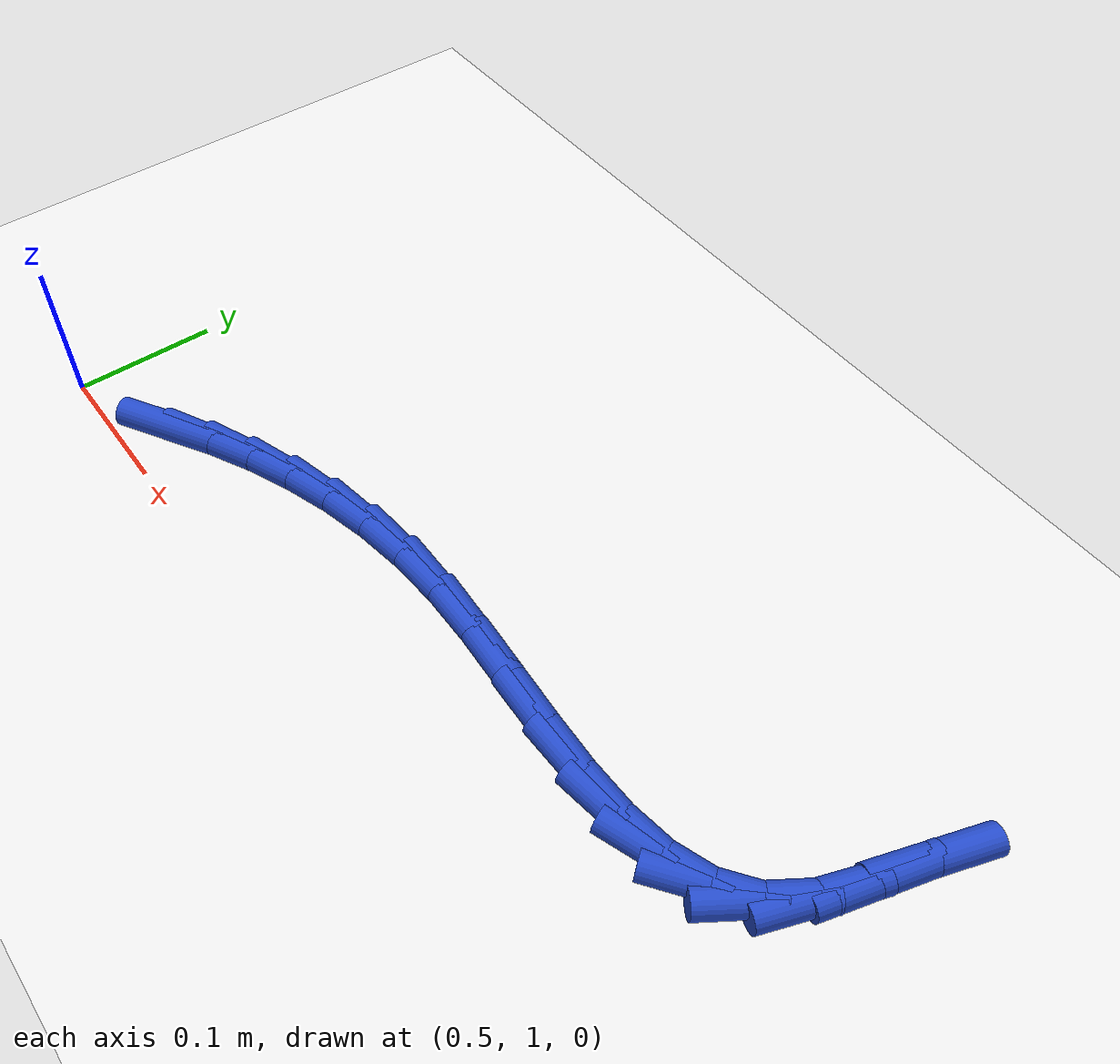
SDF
<sdf version="1.6">
 <world name="default">
  <model name="ground_plane">
   <static>1</static>
   <link name="link">
    <collision name="collision">
     <geometry><plane><normal>0 0 1</normal><size>100 100</size></plane></geometry>
     <surface><friction><ode><mu>100</mu><mu2>50</mu2></ode></friction></surface>
    </collision>
    <visual name="visual">
     <cast_shadows>0</cast_shadows>
     <geometry><plane><normal>0 0 1</normal><size>100 100</size></plane></geometry>
     <material>
      <script><uri>file://media/materials/scripts/gazebo.material</uri><name>Gazebo/WhiteGlow</name></script>
     </material>
    </visual>
   </link>
  </model>
  <model name="line">
   <link name="link_38">
    <pose>0.5825424784225489 1.0328110645333466 0.01 0 1.57 0.5474065831876195</pose>
    <collision name="collision">
     <geometry><cylinder><radius>0.01</radius><length>0.08</length></cylinder></geometry>
    </collision>
    <visual name="visual">
     <material>
      <script><name>Gazebo/Blue</name><uri>file://media/materials/scripts/gazebo.material</uri></script>
     </material>
     <geometry><cylinder><radius>0.01</radius><length>0.08</length></cylinder></geometry>
    </visual>
   </link>
   <link name="link_39">
    <pose>0.6098832795739517 1.049476447361553 0.01 0 1.57 0.4804702966707305</pose>
    <collision name="collision">
     <geometry><cylinder><radius>0.01</radius><length>0.08</length></cylinder></geometry>
    </collision>
    <visual name="visual">
     <material>
      <script><name>Gazebo/Blue</name><uri>file://media/materials/scripts/gazebo.material</uri></script>
     </material>
     <geometry><cylinder><radius>0.01</radius><length>0.08</length></cylinder></geometry>
    </visual>
   </link>
   <link name="link_40">
    <pose>0.6383939959958345 1.0643364823566703 0.01 0 1.57 0.40749841973965417</pose>
    <collision name="collision">
     <geometry><cylinder><radius>0.01</radius><length>0.08</length></cylinder></geometry>
    </collision>
    <visual name="visual">
     <material>
      <script><name>Gazebo/Blue</name><uri>file://media/materials/scripts/gazebo.material</uri></script>
     </material>
     <geometry><cylinder><radius>0.01</radius><length>0.08</length></cylinder></geometry>
    </visual>
   </link>
   <link name="link_41">
    <pose>0.6681399343372383 1.0771766227002644 0.01 0 1.57 0.32917852488138627</pose>
    <collision name="collision">
     <geometry><cylinder><radius>0.01</radius><length>0.08</length></cylinder></geometry>
    </collision>
    <visual name="visual">
     <material>
      <script><name>Gazebo/Blue</name><uri>file://media/materials/scripts/gazebo.material</uri></script>
     </material>
     <geometry><cylinder><radius>0.01</radius><length>0.08</length></cylinder></geometry>
    </visual>
   </link>
   <link name="link_42">
    <pose>0.699186401247205 1.087782321573901 0.01 0 1.57 0.24653549059472318</pose>
    <collision name="collision">
     <geometry><cylinder><radius>0.01</radius><length>0.08</length></cylinder></geometry>
    </collision>
    <visual name="visual">
     <material>
      <script><name>Gazebo/Blue</name><uri>file://media/materials/scripts/gazebo.material</uri></script>
     </material>
     <geometry><cylinder><radius>0.01</radius><length>0.08</length></cylinder></geometry>
    </visual>
   </link>
   <link name="link_43">
    <pose>0.7315987033747753 1.095939032159146 0.01 0 1.57 0.16090811380330003</pose>
    <collision name="collision">
     <geometry><cylinder><radius>0.01</radius><length>0.08</length></cylinder></geometry>
    </collision>
    <visual name="visual">
     <material>
      <script><name>Gazebo/Blue</name><uri>file://media/materials/scripts/gazebo.material</uri></script>
     </material>
     <geometry><cylinder><radius>0.01</radius><length>0.08</length></cylinder></geometry>
    </visual>
   </link>
   <link name="link_44">
    <pose>0.7654421473689907 1.1014322076375642 0.01 0 1.57 0.07386372127714673</pose>
    <collision name="collision">
     <geometry><cylinder><radius>0.01</radius><length>0.08</length></cylinder></geometry>
    </collision>
    <visual name="visual">
     <material>
      <script><name>Gazebo/Blue</name><uri>file://media/materials/scripts/gazebo.material</uri></script>
     </material>
     <geometry><cylinder><radius>0.01</radius><length>0.08</length></cylinder></geometry>
    </visual>
   </link>
   <link name="link_45">
    <pose>0.8007820398788928 1.1040473011907221 0.01 0 1.57 -0.008468546841838393</pose>
    <collision name="collision">
     <geometry><cylinder><radius>0.01</radius><length>0.08</length></cylinder></geometry>
    </collision>
    <visual name="visual">
     <material>
      <script><name>Gazebo/Blue</name><uri>file://media/materials/scripts/gazebo.material</uri></script>
     </material>
     <geometry><cylinder><radius>0.01</radius><length>0.08</length></cylinder></geometry>
    </visual>
   </link>
   <link name="link_46">
    <pose>0.8375799641351765 1.1037356687957338 0.01 0 1.57 -0.05910049594051212</pose>
    <collision name="collision">
     <geometry><cylinder><radius>0.01</radius><length>0.08</length></cylinder></geometry>
    </collision>
    <visual name="visual">
     <material>
      <script><name>Gazebo/Blue</name><uri>file://media/materials/scripts/gazebo.material</uri></script>
     </material>
     <geometry><cylinder><radius>0.01</radius><length>0.08</length></cylinder></geometry>
    </visual>
   </link>
   <link name="link_47">
    <pose>0.8751315999142886 1.1015137609511574 0.01 0 1.57 -0.07204867757715043</pose>
    <collision name="collision">
     <geometry><cylinder><radius>0.01</radius><length>0.08</length></cylinder></geometry>
    </collision>
    <visual name="visual">
     <material>
      <script><name>Gazebo/Blue</name><uri>file://media/materials/scripts/gazebo.material</uri></script>
     </material>
     <geometry><cylinder><radius>0.01</radius><length>0.08</length></cylinder></geometry>
    </visual>
   </link>
   <link name="link_48">
    <pose>0.9124694623953131 1.0988189527942498 0.01 0 1.57 -0.04779239952121264</pose>
    <collision name="collision">
     <geometry><cylinder><radius>0.01</radius><length>0.08</length></cylinder></geometry>
    </collision>
    <visual name="visual">
     <material>
      <script><name>Gazebo/Blue</name><uri>file://media/materials/scripts/gazebo.material</uri></script>
     </material>
     <geometry><cylinder><radius>0.01</radius><length>0.08</length></cylinder></geometry>
    </visual>
   </link>
   <link name="link_49">
    <pose>0.9486254186768805 1.0970896560493837 0.01 0 1.57 0.01983589813207836</pose>
    <collision name="collision">
     <geometry><cylinder><radius>0.01</radius><length>0.08</length></cylinder></geometry>
    </collision>
    <visual name="visual">
     <material>
      <script><name>Gazebo/Blue</name><uri>file://media/materials/scripts/gazebo.material</uri></script>
     </material>
     <geometry><cylinder><radius>0.01</radius><length>0.08</length></cylinder></geometry>
    </visual>
   </link>
   <link name="link_50">
    <pose>0.9826313358576215 1.0977642824409317 0.01 0 1.57 0.14520868880037902</pose>
    <collision name="collision">
     <geometry><cylinder><radius>0.01</radius><length>0.08</length></cylinder></geometry>
    </collision>
    <visual name="visual">
     <material>
      <script><name>Gazebo/Blue</name><uri>file://media/materials/scripts/gazebo.material</uri></script>
     </material>
     <geometry><cylinder><radius>0.01</radius><length>0.08</length></cylinder></geometry>
    </visual>
   </link>
   <link name="link_51">
    <pose>1.0135190810361663 1.102281243693267 0.01 0 1.57 0.35047463589331795</pose>
    <collision name="collision">
     <geometry><cylinder><radius>0.01</radius><length>0.08</length></cylinder></geometry>
    </collision>
    <visual name="visual">
     <material>
      <script><name>Gazebo/Blue</name><uri>file://media/materials/scripts/gazebo.material</uri></script>
     </material>
     <geometry><cylinder><radius>0.01</radius><length>0.08</length></cylinder></geometry>
    </visual>
   </link>
   <link name="link_52">
    <pose>1.0403205213111448 1.1120789515307619 0.01 0 1.57 0.6495539541764709</pose>
    <collision name="collision">
     <geometry><cylinder><radius>0.01</radius><length>0.08</length></cylinder></geometry>
    </collision>
    <visual name="visual">
     <material>
      <script><name>Gazebo/Blue</name><uri>file://media/materials/scripts/gazebo.material</uri></script>
     </material>
     <geometry><cylinder><radius>0.01</radius><length>0.08</length></cylinder></geometry>
    </visual>
   </link>
   <link name="link_53">
    <pose>1.0620675237811874 1.1285958176777893 0.01 0 1.57 0.9969786287074212</pose>
    <collision name="collision">
     <geometry><cylinder><radius>0.01</radius><length>0.08</length></cylinder></geometry>
    </collision>
    <visual name="visual">
     <material>
      <script><name>Gazebo/Blue</name><uri>file://media/materials/scripts/gazebo.material</uri></script>
     </material>
     <geometry><cylinder><radius>0.01</radius><length>0.08</length></cylinder></geometry>
    </visual>
   </link>
   <link name="link_54">
    <pose>1.0779082851085657 1.1531031609403624 0.01 0 1.57 1.2256817387763668</pose>
    <collision name="collision">
     <geometry><cylinder><radius>0.01</radius><length>0.08</length></cylinder></geometry>
    </collision>
    <visual name="visual">
     <material>
      <script><name>Gazebo/Blue</name><uri>file://media/materials/scripts/gazebo.material</uri></script>
     </material>
     <geometry><cylinder><radius>0.01</radius><length>0.08</length></cylinder></geometry>
    </visual>
   </link>
   <link name="link_55">
    <pose>1.0890072212160025 1.1839762524669761 0.01 0 1.57 1.2994051536043765</pose>
    <collision name="collision">
     <geometry><cylinder><radius>0.01</radius><length>0.08</length></cylinder></geometry>
    </collision>
    <visual name="visual">
     <material>
      <script><name>Gazebo/Blue</name><uri>file://media/materials/scripts/gazebo.material</uri></script>
     </material>
     <geometry><cylinder><radius>0.01</radius><length>0.08</length></cylinder></geometry>
    </visual>
   </link>
   <link name="link_56">
    <pose>1.0982350865183559 1.2171394208474438 0.01 0 1.57 1.2534245858645</pose>
    <collision name="collision">
     <geometry><cylinder><radius>0.01</radius><length>0.08</length></cylinder></geometry>
    </collision>
    <visual name="visual">
     <material>
      <script><name>Gazebo/Blue</name><uri>file://media/materials/scripts/gazebo.material</uri></script>
     </material>
     <geometry><cylinder><radius>0.01</radius><length>0.08</length></cylinder></geometry>
    </visual>
   </link>
  </model>
 </world>
</sdf>
